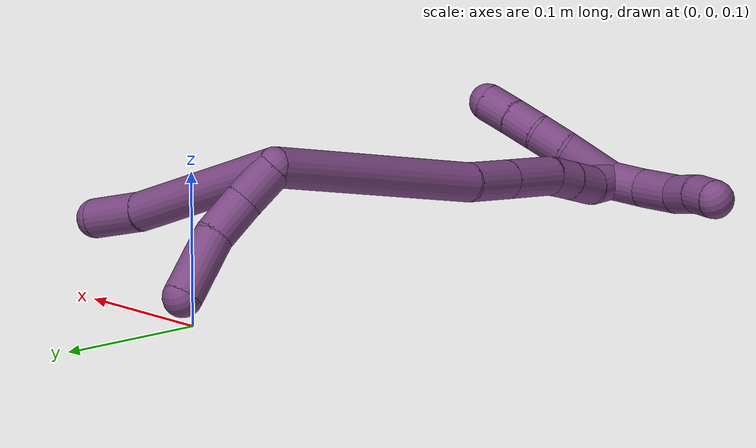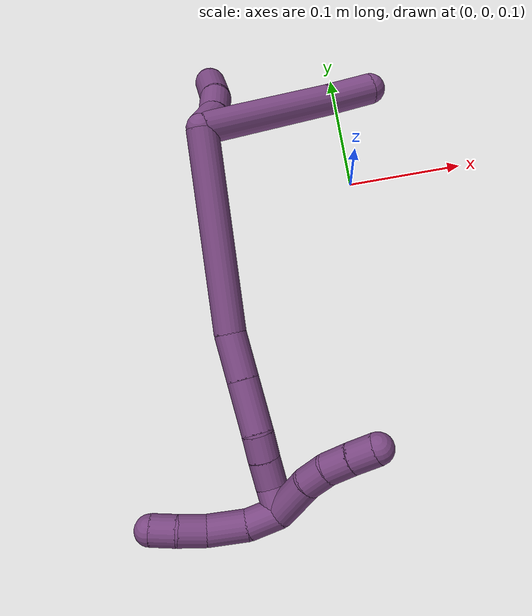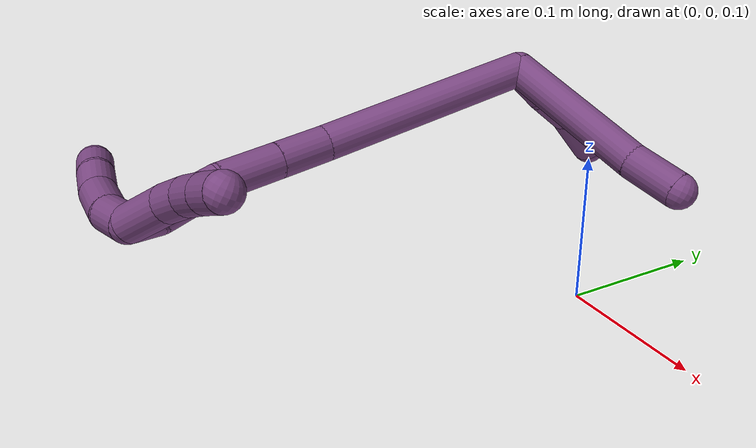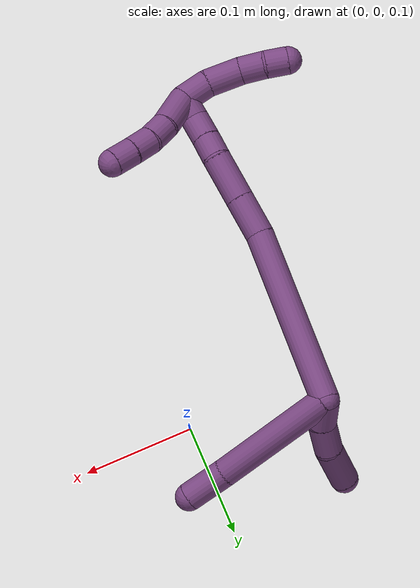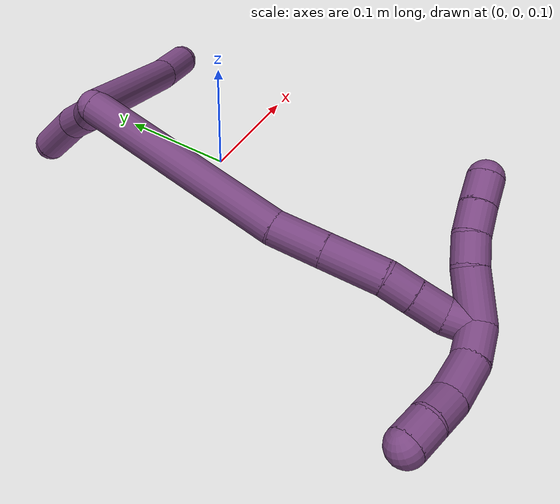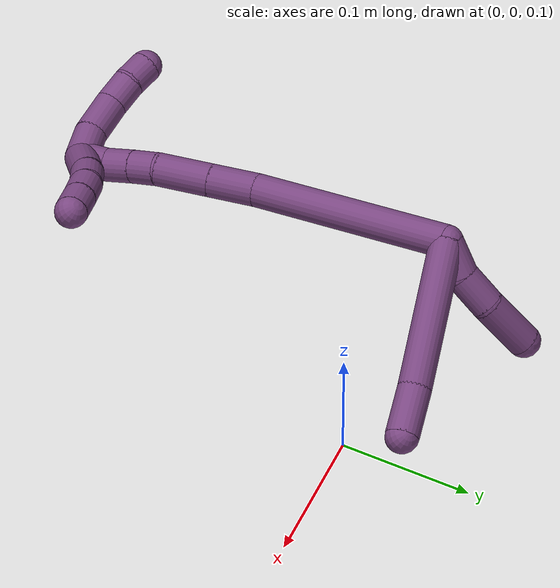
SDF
<sdf version="1.7">
 <world name="default">
  <model name="20">
   <static>0</static>
   <link name="20">
    <collision name="collision-cylinder-e_1_2_8">
     <pose>0.053785 0.008562 -0.012815 -2.55261 1.29173 -2.37639</pose>
     <geometry><cylinder><radius>0.0125</radius><length>0.1119</length></cylinder></geometry>
     <surface>
      <friction><ode><mu>1.16</mu><mu2>1.16</mu2><slip1>0</slip1><slip2>0</slip2></ode></friction>
      <contact><ode><kp>1e+06</kp><kd>1</kd><max_vel>0</max_vel><min_depth>0.001</min_depth></ode></contact>
     </surface>
    </collision>
    <visual name="visual-cylinder-e_1_2_8">
     <pose>0.053785 0.008562 -0.012815 -2.55261 1.29173 -2.37639</pose>
     <geometry><cylinder><radius>0.0125</radius><length>0.1119</length></cylinder></geometry>
     <material><ambient>0.478431 0.278431 0.509804 1</ambient></material>
    </visual>
    <collision name="collision-cylinder-e_2_8_6">
     <pose>0.126412 0.01842 -0.028127 -2.66271 1.42254 -2.58947</pose>
     <geometry><cylinder><radius>0.0125</radius><length>0.0381</length></cylinder></geometry>
     <surface>
      <friction><ode><mu>1.16</mu><mu2>1.16</mu2><slip1>0</slip1><slip2>0</slip2></ode></friction>
      <contact><ode><kp>1e+06</kp><kd>1</kd><max_vel>0</max_vel><min_depth>0.001</min_depth></ode></contact>
     </surface>
    </collision>
    <visual name="visual-cylinder-e_2_8_6">
     <pose>0.126412 0.01842 -0.028127 -2.66271 1.42254 -2.58947</pose>
     <geometry><cylinder><radius>0.0125</radius><length>0.0381</length></cylinder></geometry>
     <material><ambient>0.478431 0.278431 0.509804 1</ambient></material>
    </visual>
    <collision name="collision-cylinder-e_1_2_9">
     <pose>0.007091 0.010948 -0.004167 -1.93448 0.54431 -0.769334</pose>
     <geometry><cylinder><radius>0.0125</radius><length>0.027386</length></cylinder></geometry>
     <surface>
      <friction><ode><mu>1.16</mu><mu2>1.16</mu2><slip1>0</slip1><slip2>0</slip2></ode></friction>
      <contact><ode><kp>1e+06</kp><kd>1</kd><max_vel>0</max_vel><min_depth>0.001</min_depth></ode></contact>
     </surface>
    </collision>
    <visual name="visual-cylinder-e_1_2_9">
     <pose>0.007091 0.010948 -0.004167 -1.93448 0.54431 -0.769334</pose>
     <geometry><cylinder><radius>0.0125</radius><length>0.027386</length></cylinder></geometry>
     <material><ambient>0.478431 0.278431 0.509804 1</ambient></material>
    </visual>
    <collision name="collision-cylinder-e_2_9_10">
     <pose>0.018404 0.035681 -0.010745 -1.74397 0.293059 -0.347743</pose>
     <geometry><cylinder><radius>0.0125</radius><length>0.029234</length></cylinder></geometry>
     <surface>
      <friction><ode><mu>1.16</mu><mu2>1.16</mu2><slip1>0</slip1><slip2>0</slip2></ode></friction>
      <contact><ode><kp>1e+06</kp><kd>1</kd><max_vel>0</max_vel><min_depth>0.001</min_depth></ode></contact>
     </surface>
    </collision>
    <visual name="visual-cylinder-e_2_9_10">
     <pose>0.018404 0.035681 -0.010745 -1.74397 0.293059 -0.347743</pose>
     <geometry><cylinder><radius>0.0125</radius><length>0.029234</length></cylinder></geometry>
     <material><ambient>0.478431 0.278431 0.509804 1</ambient></material>
    </visual>
    <collision name="collision-cylinder-e_3_10_5">
     <pose>0.024867 0.070057 -0.019591 -1.87363 0.10349 -0.140653</pose>
     <geometry><cylinder><radius>0.0125</radius><length>0.04338</length></cylinder></geometry>
     <surface>
      <friction><ode><mu>1.16</mu><mu2>1.16</mu2><slip1>0</slip1><slip2>0</slip2></ode></friction>
      <contact><ode><kp>1e+06</kp><kd>1</kd><max_vel>0</max_vel><min_depth>0.001</min_depth></ode></contact>
     </surface>
    </collision>
    <visual name="visual-cylinder-e_3_10_5">
     <pose>0.024867 0.070057 -0.019591 -1.87363 0.10349 -0.140653</pose>
     <geometry><cylinder><radius>0.0125</radius><length>0.04338</length></cylinder></geometry>
     <material><ambient>0.478431 0.278431 0.509804 1</ambient></material>
    </visual>
    <collision name="collision-cylinder-e_1_2_11">
     <pose>-0.016986 -0.055646 -0.053158 2.33333 -0.217233 -0.499314</pose>
     <geometry><cylinder><radius>0.0125</radius><length>0.157617</length></cylinder></geometry>
     <surface>
      <friction><ode><mu>1.16</mu><mu2>1.16</mu2><slip1>0</slip1><slip2>0</slip2></ode></friction>
      <contact><ode><kp>1e+06</kp><kd>1</kd><max_vel>0</max_vel><min_depth>0.001</min_depth></ode></contact>
     </surface>
    </collision>
    <visual name="visual-cylinder-e_1_2_11">
     <pose>-0.016986 -0.055646 -0.053158 2.33333 -0.217233 -0.499314</pose>
     <geometry><cylinder><radius>0.0125</radius><length>0.157617</length></cylinder></geometry>
     <material><ambient>0.478431 0.278431 0.509804 1</ambient></material>
    </visual>
    <collision name="collision-cylinder-e_2_11_12">
     <pose>-0.035621 -0.125756 -0.11743 2.22595 -0.090187 -0.182646</pose>
     <geometry><cylinder><radius>0.0125</radius><length>0.03663</length></cylinder></geometry>
     <surface>
      <friction><ode><mu>1.16</mu><mu2>1.16</mu2><slip1>0</slip1><slip2>0</slip2></ode></friction>
      <contact><ode><kp>1e+06</kp><kd>1</kd><max_vel>0</max_vel><min_depth>0.001</min_depth></ode></contact>
     </surface>
    </collision>
    <visual name="visual-cylinder-e_2_11_12">
     <pose>-0.035621 -0.125756 -0.11743 2.22595 -0.090187 -0.182646</pose>
     <geometry><cylinder><radius>0.0125</radius><length>0.03663</length></cylinder></geometry>
     <material><ambient>0.478431 0.278431 0.509804 1</ambient></material>
    </visual>
    <collision name="collision-cylinder-e_3_12_13">
     <pose>-0.039153 -0.156873 -0.141264 2.22312 -0.089607 -0.180836</pose>
     <geometry><cylinder><radius>0.0125</radius><length>0.042079</length></cylinder></geometry>
     <surface>
      <friction><ode><mu>1.16</mu><mu2>1.16</mu2><slip1>0</slip1><slip2>0</slip2></ode></friction>
      <contact><ode><kp>1e+06</kp><kd>1</kd><max_vel>0</max_vel><min_depth>0.001</min_depth></ode></contact>
     </surface>
    </collision>
    <visual name="visual-cylinder-e_3_12_13">
     <pose>-0.039153 -0.156873 -0.141264 2.22312 -0.089607 -0.180836</pose>
     <geometry><cylinder><radius>0.0125</radius><length>0.042079</length></cylinder></geometry>
     <material><ambient>0.478431 0.278431 0.509804 1</ambient></material>
    </visual>
    <collision name="collision-cylinder-e_4_13_14">
     <pose>-0.042104 -0.180291 -0.16161 2.41588 -0.104424 -0.273571</pose>
     <geometry><cylinder><radius>0.0125</radius><length>0.0205</length></cylinder></geometry>
     <surface>
      <friction><ode><mu>1.16</mu><mu2>1.16</mu2><slip1>0</slip1><slip2>0</slip2></ode></friction>
      <contact><ode><kp>1e+06</kp><kd>1</kd><max_vel>0</max_vel><min_depth>0.001</min_depth></ode></contact>
     </surface>
    </collision>
    <visual name="visual-cylinder-e_4_13_14">
     <pose>-0.042104 -0.180291 -0.16161 2.41588 -0.104424 -0.273571</pose>
     <geometry><cylinder><radius>0.0125</radius><length>0.0205</length></cylinder></geometry>
     <material><ambient>0.478431 0.278431 0.509804 1</ambient></material>
    </visual>
    <collision name="collision-cylinder-e_5_14_15">
     <pose>-0.04403 -0.194492 -0.177874 2.43088 -0.075117 -0.201818</pose>
     <geometry><cylinder><radius>0.0125</radius><length>0.022859</length></cylinder></geometry>
     <surface>
      <friction><ode><mu>1.16</mu><mu2>1.16</mu2><slip1>0</slip1><slip2>0</slip2></ode></friction>
      <contact><ode><kp>1e+06</kp><kd>1</kd><max_vel>0</max_vel><min_depth>0.001</min_depth></ode></contact>
     </surface>
    </collision>
    <visual name="visual-cylinder-e_5_14_15">
     <pose>-0.04403 -0.194492 -0.177874 2.43088 -0.075117 -0.201818</pose>
     <geometry><cylinder><radius>0.0125</radius><length>0.022859</length></cylinder></geometry>
     <material><ambient>0.478431 0.278431 0.509804 1</ambient></material>
    </visual>
    <collision name="collision-cylinder-e_6_15_1">
     <pose>-0.045623 -0.210625 -0.191705 2.10905 -0.072417 -0.127462</pose>
     <geometry><cylinder><radius>0.0125</radius><length>0.020314</length></cylinder></geometry>
     <surface>
      <friction><ode><mu>1.16</mu><mu2>1.16</mu2><slip1>0</slip1><slip2>0</slip2></ode></friction>
      <contact><ode><kp>1e+06</kp><kd>1</kd><max_vel>0</max_vel><min_depth>0.001</min_depth></ode></contact>
     </surface>
    </collision>
    <visual name="visual-cylinder-e_6_15_1">
     <pose>-0.045623 -0.210625 -0.191705 2.10905 -0.072417 -0.127462</pose>
     <geometry><cylinder><radius>0.0125</radius><length>0.020314</length></cylinder></geometry>
     <material><ambient>0.478431 0.278431 0.509804 1</ambient></material>
    </visual>
    <collision name="collision-cylinder-e_1_1_16">
     <pose>-0.059119 -0.218261 -0.198795 -2.63098 -1.40206 2.54179</pose>
     <geometry><cylinder><radius>0.0125</radius><length>0.025891</length></cylinder></geometry>
     <surface>
      <friction><ode><mu>1.16</mu><mu2>1.16</mu2><slip1>0</slip1><slip2>0</slip2></ode></friction>
      <contact><ode><kp>1e+06</kp><kd>1</kd><max_vel>0</max_vel><min_depth>0.001</min_depth></ode></contact>
     </surface>
    </collision>
    <visual name="visual-cylinder-e_1_1_16">
     <pose>-0.059119 -0.218261 -0.198795 -2.63098 -1.40206 2.54179</pose>
     <geometry><cylinder><radius>0.0125</radius><length>0.025891</length></cylinder></geometry>
     <material><ambient>0.478431 0.278431 0.509804 1</ambient></material>
    </visual>
    <collision name="collision-cylinder-e_2_16_17">
     <pose>-0.087127 -0.213483 -0.199502 -1.2609 -1.32027 1.03094</pose>
     <geometry><cylinder><radius>0.0125</radius><length>0.031474</length></cylinder></geometry>
     <surface>
      <friction><ode><mu>1.16</mu><mu2>1.16</mu2><slip1>0</slip1><slip2>0</slip2></ode></friction>
      <contact><ode><kp>1e+06</kp><kd>1</kd><max_vel>0</max_vel><min_depth>0.001</min_depth></ode></contact>
     </surface>
    </collision>
    <visual name="visual-cylinder-e_2_16_17">
     <pose>-0.087127 -0.213483 -0.199502 -1.2609 -1.32027 1.03094</pose>
     <geometry><cylinder><radius>0.0125</radius><length>0.031474</length></cylinder></geometry>
     <material><ambient>0.478431 0.278431 0.509804 1</ambient></material>
    </visual>
    <collision name="collision-cylinder-e_3_17_18">
     <pose>-0.112684 -0.206837 -0.195163 -0.749363 -1.17556 0.512567</pose>
     <geometry><cylinder><radius>0.0125</radius><length>0.022346</length></cylinder></geometry>
     <surface>
      <friction><ode><mu>1.16</mu><mu2>1.16</mu2><slip1>0</slip1><slip2>0</slip2></ode></friction>
      <contact><ode><kp>1e+06</kp><kd>1</kd><max_vel>0</max_vel><min_depth>0.001</min_depth></ode></contact>
     </surface>
    </collision>
    <visual name="visual-cylinder-e_3_17_18">
     <pose>-0.112684 -0.206837 -0.195163 -0.749363 -1.17556 0.512567</pose>
     <geometry><cylinder><radius>0.0125</radius><length>0.022346</length></cylinder></geometry>
     <material><ambient>0.478431 0.278431 0.509804 1</ambient></material>
    </visual>
    <collision name="collision-cylinder-e_4_18_4">
     <pose>-0.132254 -0.200016 -0.190575 -1.21675 -1.14963 0.847677</pose>
     <geometry><cylinder><radius>0.0125</radius><length>0.020289</length></cylinder></geometry>
     <surface>
      <friction><ode><mu>1.16</mu><mu2>1.16</mu2><slip1>0</slip1><slip2>0</slip2></ode></friction>
      <contact><ode><kp>1e+06</kp><kd>1</kd><max_vel>0</max_vel><min_depth>0.001</min_depth></ode></contact>
     </surface>
    </collision>
    <visual name="visual-cylinder-e_4_18_4">
     <pose>-0.132254 -0.200016 -0.190575 -1.21675 -1.14963 0.847677</pose>
     <geometry><cylinder><radius>0.0125</radius><length>0.020289</length></cylinder></geometry>
     <material><ambient>0.478431 0.278431 0.509804 1</ambient></material>
    </visual>
    <collision name="collision-cylinder-e_1_1_19">
     <pose>-0.033339 -0.219318 -0.184046 -0.000442 0.791833 -0.000185</pose>
     <geometry><cylinder><radius>0.0125</radius><length>0.036589</length></cylinder></geometry>
     <surface>
      <friction><ode><mu>1.16</mu><mu2>1.16</mu2><slip1>0</slip1><slip2>0</slip2></ode></friction>
      <contact><ode><kp>1e+06</kp><kd>1</kd><max_vel>0</max_vel><min_depth>0.001</min_depth></ode></contact>
     </surface>
    </collision>
    <visual name="visual-cylinder-e_1_1_19">
     <pose>-0.033339 -0.219318 -0.184046 -0.000442 0.791833 -0.000185</pose>
     <geometry><cylinder><radius>0.0125</radius><length>0.036589</length></cylinder></geometry>
     <material><ambient>0.478431 0.278431 0.509804 1</ambient></material>
    </visual>
    <collision name="collision-cylinder-e_2_19_20">
     <pose>-0.011772 -0.220347 -0.165248 0.172347 0.956012 0.089452</pose>
     <geometry><cylinder><radius>0.0125</radius><length>0.020927</length></cylinder></geometry>
     <surface>
      <friction><ode><mu>1.16</mu><mu2>1.16</mu2><slip1>0</slip1><slip2>0</slip2></ode></friction>
      <contact><ode><kp>1e+06</kp><kd>1</kd><max_vel>0</max_vel><min_depth>0.001</min_depth></ode></contact>
     </surface>
    </collision>
    <visual name="visual-cylinder-e_2_19_20">
     <pose>-0.011772 -0.220347 -0.165248 0.172347 0.956012 0.089452</pose>
     <geometry><cylinder><radius>0.0125</radius><length>0.020927</length></cylinder></geometry>
     <material><ambient>0.478431 0.278431 0.509804 1</ambient></material>
    </visual>
    <collision name="collision-cylinder-e_3_20_21">
     <pose>0.006099 -0.223669 -0.154847 0.474192 1.07793 0.287026</pose>
     <geometry><cylinder><radius>0.0125</radius><length>0.021167</length></cylinder></geometry>
     <surface>
      <friction><ode><mu>1.16</mu><mu2>1.16</mu2><slip1>0</slip1><slip2>0</slip2></ode></friction>
      <contact><ode><kp>1e+06</kp><kd>1</kd><max_vel>0</max_vel><min_depth>0.001</min_depth></ode></contact>
     </surface>
    </collision>
    <visual name="visual-cylinder-e_3_20_21">
     <pose>0.006099 -0.223669 -0.154847 0.474192 1.07793 0.287026</pose>
     <geometry><cylinder><radius>0.0125</radius><length>0.021167</length></cylinder></geometry>
     <material><ambient>0.478431 0.278431 0.509804 1</ambient></material>
    </visual>
    <collision name="collision-cylinder-e_4_21_3">
     <pose>0.024985 -0.228458 -0.146403 0.560385 1.11316 0.354333</pose>
     <geometry><cylinder><radius>0.0125</radius><length>0.021318</length></cylinder></geometry>
     <surface>
      <friction><ode><mu>1.16</mu><mu2>1.16</mu2><slip1>0</slip1><slip2>0</slip2></ode></friction>
      <contact><ode><kp>1e+06</kp><kd>1</kd><max_vel>0</max_vel><min_depth>0.001</min_depth></ode></contact>
     </surface>
    </collision>
    <visual name="visual-cylinder-e_4_21_3">
     <pose>0.024985 -0.228458 -0.146403 0.560385 1.11316 0.354333</pose>
     <geometry><cylinder><radius>0.0125</radius><length>0.021318</length></cylinder></geometry>
     <material><ambient>0.478431 0.278431 0.509804 1</ambient></material>
    </visual>
    <collision name="collision-sphere-3">
     <pose>0.034547 -0.230961 -0.142414 0 -0 0</pose>
     <geometry><sphere><radius>0.0125</radius></sphere></geometry>
     <surface>
      <friction><ode><mu>1.16</mu><mu2>1.16</mu2><slip1>0</slip1><slip2>0</slip2></ode></friction>
      <contact><ode><kp>1e+06</kp><kd>1</kd><max_vel>0</max_vel><min_depth>0.001</min_depth></ode></contact>
     </surface>
    </collision>
    <visual name="visual-sphere-3">
     <pose>0.034547 -0.230961 -0.142414 0 -0 0</pose>
     <geometry><sphere><radius>0.0125</radius></sphere></geometry>
     <material><ambient>0.478431 0.278431 0.509804 1</ambient></material>
    </visual>
    <collision name="collision-sphere-21">
     <pose>0.015423 -0.225955 -0.150392 0 -0 0</pose>
     <geometry><sphere><radius>0.0125</radius></sphere></geometry>
     <surface>
      <friction><ode><mu>1.16</mu><mu2>1.16</mu2><slip1>0</slip1><slip2>0</slip2></ode></friction>
      <contact><ode><kp>1e+06</kp><kd>1</kd><max_vel>0</max_vel><min_depth>0.001</min_depth></ode></contact>
     </surface>
    </collision>
    <visual name="visual-sphere-21">
     <pose>0.015423 -0.225955 -0.150392 0 -0 0</pose>
     <geometry><sphere><radius>0.0125</radius></sphere></geometry>
     <material><ambient>0.478431 0.278431 0.509804 1</ambient></material>
    </visual>
    <collision name="collision-sphere-20">
     <pose>-0.003225 -0.221382 -0.159302 0 -0 0</pose>
     <geometry><sphere><radius>0.0125</radius></sphere></geometry>
     <surface>
      <friction><ode><mu>1.16</mu><mu2>1.16</mu2><slip1>0</slip1><slip2>0</slip2></ode></friction>
      <contact><ode><kp>1e+06</kp><kd>1</kd><max_vel>0</max_vel><min_depth>0.001</min_depth></ode></contact>
     </surface>
    </collision>
    <visual name="visual-sphere-20">
     <pose>-0.003225 -0.221382 -0.159302 0 -0 0</pose>
     <geometry><sphere><radius>0.0125</radius></sphere></geometry>
     <material><ambient>0.478431 0.278431 0.509804 1</ambient></material>
    </visual>
    <collision name="collision-sphere-19">
     <pose>-0.02032 -0.219312 -0.171193 0 -0 0</pose>
     <geometry><sphere><radius>0.0125</radius></sphere></geometry>
     <surface>
      <friction><ode><mu>1.16</mu><mu2>1.16</mu2><slip1>0</slip1><slip2>0</slip2></ode></friction>
      <contact><ode><kp>1e+06</kp><kd>1</kd><max_vel>0</max_vel><min_depth>0.001</min_depth></ode></contact>
     </surface>
    </collision>
    <visual name="visual-sphere-19">
     <pose>-0.02032 -0.219312 -0.171193 0 -0 0</pose>
     <geometry><sphere><radius>0.0125</radius></sphere></geometry>
     <material><ambient>0.478431 0.278431 0.509804 1</ambient></material>
    </visual>
    <collision name="collision-sphere-5">
     <pose>0.027108 0.090649 -0.026024 0 -0 0</pose>
     <geometry><sphere><radius>0.0125</radius></sphere></geometry>
     <surface>
      <friction><ode><mu>1.16</mu><mu2>1.16</mu2><slip1>0</slip1><slip2>0</slip2></ode></friction>
      <contact><ode><kp>1e+06</kp><kd>1</kd><max_vel>0</max_vel><min_depth>0.001</min_depth></ode></contact>
     </surface>
    </collision>
    <visual name="visual-sphere-5">
     <pose>0.027108 0.090649 -0.026024 0 -0 0</pose>
     <geometry><sphere><radius>0.0125</radius></sphere></geometry>
     <material><ambient>0.478431 0.278431 0.509804 1</ambient></material>
    </visual>
    <collision name="collision-sphere-10">
     <pose>0.022627 0.049465 -0.013157 0 -0 0</pose>
     <geometry><sphere><radius>0.0125</radius></sphere></geometry>
     <surface>
      <friction><ode><mu>1.16</mu><mu2>1.16</mu2><slip1>0</slip1><slip2>0</slip2></ode></friction>
      <contact><ode><kp>1e+06</kp><kd>1</kd><max_vel>0</max_vel><min_depth>0.001</min_depth></ode></contact>
     </surface>
    </collision>
    <visual name="visual-sphere-10">
     <pose>0.022627 0.049465 -0.013157 0 -0 0</pose>
     <geometry><sphere><radius>0.0125</radius></sphere></geometry>
     <material><ambient>0.478431 0.278431 0.509804 1</ambient></material>
    </visual>
    <collision name="collision-sphere-6">
     <pose>0.145253 0.019716 -0.030625 0 -0 0</pose>
     <geometry><sphere><radius>0.0125</radius></sphere></geometry>
     <surface>
      <friction><ode><mu>1.16</mu><mu2>1.16</mu2><slip1>0</slip1><slip2>0</slip2></ode></friction>
      <contact><ode><kp>1e+06</kp><kd>1</kd><max_vel>0</max_vel><min_depth>0.001</min_depth></ode></contact>
     </surface>
    </collision>
    <visual name="visual-sphere-6">
     <pose>0.145253 0.019716 -0.030625 0 -0 0</pose>
     <geometry><sphere><radius>0.0125</radius></sphere></geometry>
     <material><ambient>0.478431 0.278431 0.509804 1</ambient></material>
    </visual>
    <collision name="collision-sphere-9">
     <pose>0.014181 0.021896 -0.008334 0 -0 0</pose>
     <geometry><sphere><radius>0.0125</radius></sphere></geometry>
     <surface>
      <friction><ode><mu>1.16</mu><mu2>1.16</mu2><slip1>0</slip1><slip2>0</slip2></ode></friction>
      <contact><ode><kp>1e+06</kp><kd>1</kd><max_vel>0</max_vel><min_depth>0.001</min_depth></ode></contact>
     </surface>
    </collision>
    <visual name="visual-sphere-9">
     <pose>0.014181 0.021896 -0.008334 0 -0 0</pose>
     <geometry><sphere><radius>0.0125</radius></sphere></geometry>
     <material><ambient>0.478431 0.278431 0.509804 1</ambient></material>
    </visual>
    <collision name="collision-sphere-2">
     <geometry><sphere><radius>0.0125</radius></sphere></geometry>
     <surface>
      <friction><ode><mu>1.16</mu><mu2>1.16</mu2><slip1>0</slip1><slip2>0</slip2></ode></friction>
      <contact><ode><kp>1e+06</kp><kd>1</kd><max_vel>0</max_vel><min_depth>0.001</min_depth></ode></contact>
     </surface>
    </collision>
    <visual name="visual-sphere-2">
     <geometry><sphere><radius>0.0125</radius></sphere></geometry>
     <material><ambient>0.478431 0.278431 0.509804 1</ambient></material>
    </visual>
    <collision name="collision-sphere-8">
     <pose>0.107571 0.017123 -0.02563 0 -0 0</pose>
     <geometry><sphere><radius>0.0125</radius></sphere></geometry>
     <surface>
      <friction><ode><mu>1.16</mu><mu2>1.16</mu2><slip1>0</slip1><slip2>0</slip2></ode></friction>
      <contact><ode><kp>1e+06</kp><kd>1</kd><max_vel>0</max_vel><min_depth>0.001</min_depth></ode></contact>
     </surface>
    </collision>
    <visual name="visual-sphere-8">
     <pose>0.107571 0.017123 -0.02563 0 -0 0</pose>
     <geometry><sphere><radius>0.0125</radius></sphere></geometry>
     <material><ambient>0.478431 0.278431 0.509804 1</ambient></material>
    </visual>
    <collision name="collision-sphere-11">
     <pose>-0.033971 -0.111292 -0.106316 0 -0 0</pose>
     <geometry><sphere><radius>0.0125</radius></sphere></geometry>
     <surface>
      <friction><ode><mu>1.16</mu><mu2>1.16</mu2><slip1>0</slip1><slip2>0</slip2></ode></friction>
      <contact><ode><kp>1e+06</kp><kd>1</kd><max_vel>0</max_vel><min_depth>0.001</min_depth></ode></contact>
     </surface>
    </collision>
    <visual name="visual-sphere-11">
     <pose>-0.033971 -0.111292 -0.106316 0 -0 0</pose>
     <geometry><sphere><radius>0.0125</radius></sphere></geometry>
     <material><ambient>0.478431 0.278431 0.509804 1</ambient></material>
    </visual>
    <collision name="collision-sphere-12">
     <pose>-0.03727 -0.14022 -0.128544 0 -0 0</pose>
     <geometry><sphere><radius>0.0125</radius></sphere></geometry>
     <surface>
      <friction><ode><mu>1.16</mu><mu2>1.16</mu2><slip1>0</slip1><slip2>0</slip2></ode></friction>
      <contact><ode><kp>1e+06</kp><kd>1</kd><max_vel>0</max_vel><min_depth>0.001</min_depth></ode></contact>
     </surface>
    </collision>
    <visual name="visual-sphere-12">
     <pose>-0.03727 -0.14022 -0.128544 0 -0 0</pose>
     <geometry><sphere><radius>0.0125</radius></sphere></geometry>
     <material><ambient>0.478431 0.278431 0.509804 1</ambient></material>
    </visual>
    <collision name="collision-sphere-13">
     <pose>-0.041036 -0.173525 -0.153985 0 -0 0</pose>
     <geometry><sphere><radius>0.0125</radius></sphere></geometry>
     <surface>
      <friction><ode><mu>1.16</mu><mu2>1.16</mu2><slip1>0</slip1><slip2>0</slip2></ode></friction>
      <contact><ode><kp>1e+06</kp><kd>1</kd><max_vel>0</max_vel><min_depth>0.001</min_depth></ode></contact>
     </surface>
    </collision>
    <visual name="visual-sphere-13">
     <pose>-0.041036 -0.173525 -0.153985 0 -0 0</pose>
     <geometry><sphere><radius>0.0125</radius></sphere></geometry>
     <material><ambient>0.478431 0.278431 0.509804 1</ambient></material>
    </visual>
    <collision name="collision-sphere-14">
     <pose>-0.043172 -0.187056 -0.169236 0 -0 0</pose>
     <geometry><sphere><radius>0.0125</radius></sphere></geometry>
     <surface>
      <friction><ode><mu>1.16</mu><mu2>1.16</mu2><slip1>0</slip1><slip2>0</slip2></ode></friction>
      <contact><ode><kp>1e+06</kp><kd>1</kd><max_vel>0</max_vel><min_depth>0.001</min_depth></ode></contact>
     </surface>
    </collision>
    <visual name="visual-sphere-14">
     <pose>-0.043172 -0.187056 -0.169236 0 -0 0</pose>
     <geometry><sphere><radius>0.0125</radius></sphere></geometry>
     <material><ambient>0.478431 0.278431 0.509804 1</ambient></material>
    </visual>
    <collision name="collision-sphere-15">
     <pose>-0.044888 -0.201927 -0.186512 0 -0 0</pose>
     <geometry><sphere><radius>0.0125</radius></sphere></geometry>
     <surface>
      <friction><ode><mu>1.16</mu><mu2>1.16</mu2><slip1>0</slip1><slip2>0</slip2></ode></friction>
      <contact><ode><kp>1e+06</kp><kd>1</kd><max_vel>0</max_vel><min_depth>0.001</min_depth></ode></contact>
     </surface>
    </collision>
    <visual name="visual-sphere-15">
     <pose>-0.044888 -0.201927 -0.186512 0 -0 0</pose>
     <geometry><sphere><radius>0.0125</radius></sphere></geometry>
     <material><ambient>0.478431 0.278431 0.509804 1</ambient></material>
    </visual>
    <collision name="collision-sphere-1">
     <pose>-0.046358 -0.219323 -0.196898 0 -0 0</pose>
     <geometry><sphere><radius>0.0125</radius></sphere></geometry>
     <surface>
      <friction><ode><mu>1.16</mu><mu2>1.16</mu2><slip1>0</slip1><slip2>0</slip2></ode></friction>
      <contact><ode><kp>1e+06</kp><kd>1</kd><max_vel>0</max_vel><min_depth>0.001</min_depth></ode></contact>
     </surface>
    </collision>
    <visual name="visual-sphere-1">
     <pose>-0.046358 -0.219323 -0.196898 0 -0 0</pose>
     <geometry><sphere><radius>0.0125</radius></sphere></geometry>
     <material><ambient>0.478431 0.278431 0.509804 1</ambient></material>
    </visual>
    <collision name="collision-sphere-18">
     <pose>-0.122996 -0.203907 -0.192013 0 -0 0</pose>
     <geometry><sphere><radius>0.0125</radius></sphere></geometry>
     <surface>
      <friction><ode><mu>1.16</mu><mu2>1.16</mu2><slip1>0</slip1><slip2>0</slip2></ode></friction>
      <contact><ode><kp>1e+06</kp><kd>1</kd><max_vel>0</max_vel><min_depth>0.001</min_depth></ode></contact>
     </surface>
    </collision>
    <visual name="visual-sphere-18">
     <pose>-0.122996 -0.203907 -0.192013 0 -0 0</pose>
     <geometry><sphere><radius>0.0125</radius></sphere></geometry>
     <material><ambient>0.478431 0.278431 0.509804 1</ambient></material>
    </visual>
    <collision name="collision-sphere-16">
     <pose>-0.071881 -0.217198 -0.200692 0 -0 0</pose>
     <geometry><sphere><radius>0.0125</radius></sphere></geometry>
     <surface>
      <friction><ode><mu>1.16</mu><mu2>1.16</mu2><slip1>0</slip1><slip2>0</slip2></ode></friction>
      <contact><ode><kp>1e+06</kp><kd>1</kd><max_vel>0</max_vel><min_depth>0.001</min_depth></ode></contact>
     </surface>
    </collision>
    <visual name="visual-sphere-16">
     <pose>-0.071881 -0.217198 -0.200692 0 -0 0</pose>
     <geometry><sphere><radius>0.0125</radius></sphere></geometry>
     <material><ambient>0.478431 0.278431 0.509804 1</ambient></material>
    </visual>
    <collision name="collision-sphere-17">
     <pose>-0.102373 -0.209767 -0.198312 0 -0 0</pose>
     <geometry><sphere><radius>0.0125</radius></sphere></geometry>
     <surface>
      <friction><ode><mu>1.16</mu><mu2>1.16</mu2><slip1>0</slip1><slip2>0</slip2></ode></friction>
      <contact><ode><kp>1e+06</kp><kd>1</kd><max_vel>0</max_vel><min_depth>0.001</min_depth></ode></contact>
     </surface>
    </collision>
    <visual name="visual-sphere-17">
     <pose>-0.102373 -0.209767 -0.198312 0 -0 0</pose>
     <geometry><sphere><radius>0.0125</radius></sphere></geometry>
     <material><ambient>0.478431 0.278431 0.509804 1</ambient></material>
    </visual>
    <collision name="collision-sphere-4">
     <pose>-0.141512 -0.196126 -0.189138 0 -0 0</pose>
     <geometry><sphere><radius>0.0125</radius></sphere></geometry>
     <surface>
      <friction><ode><mu>1.16</mu><mu2>1.16</mu2><slip1>0</slip1><slip2>0</slip2></ode></friction>
      <contact><ode><kp>1e+06</kp><kd>1</kd><max_vel>0</max_vel><min_depth>0.001</min_depth></ode></contact>
     </surface>
    </collision>
    <visual name="visual-sphere-4">
     <pose>-0.141512 -0.196126 -0.189138 0 -0 0</pose>
     <geometry><sphere><radius>0.0125</radius></sphere></geometry>
     <material><ambient>0.478431 0.278431 0.509804 1</ambient></material>
    </visual>
    <inertial>
     <pose>-0.008078 -0.092863 -0.093235 0 -0 0</pose>
     <mass>0.75</mass>
     <inertia>
      <ixx>0.000123</ixx>
      <ixy>0</ixy>
      <ixz>0</ixz>
      <iyy>-0.000239</iyy>
      <iyz>0</iyz>
      <izz>0.000149</izz>
     </inertia>
    </inertial>
   </link>
   <pose>-0.11375 0.028448 0.224588 -0.541722 0.09411 0.196049</pose>
  </model>
 </world>
</sdf>
